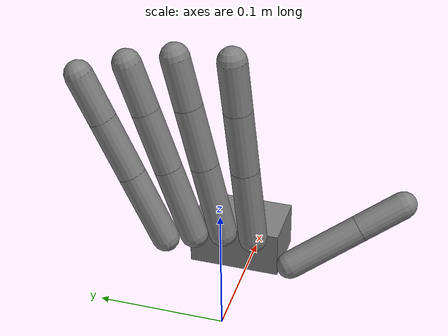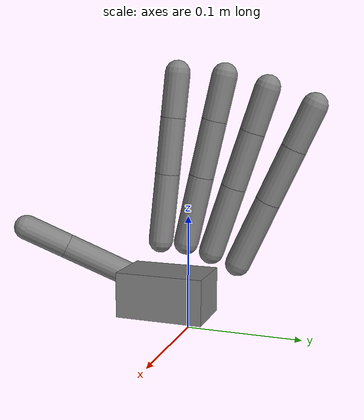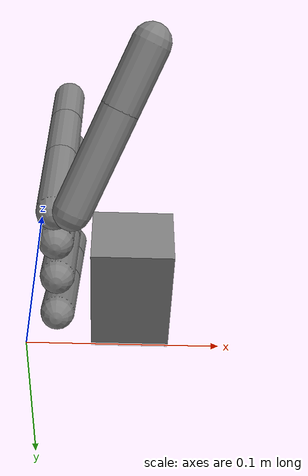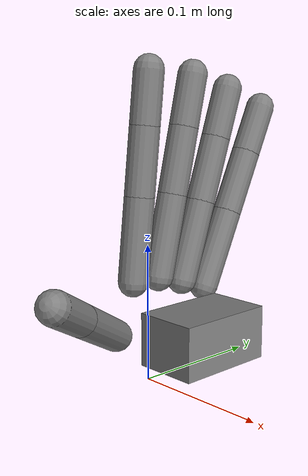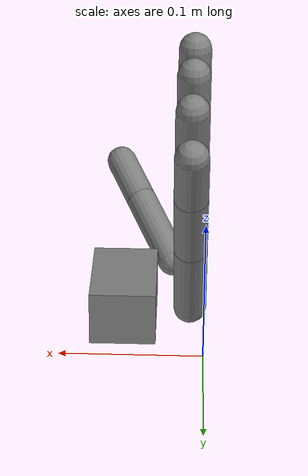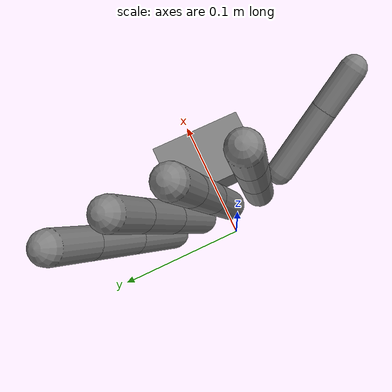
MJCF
<mujoco model="hand_contact_dynamics">
  <compiler angle="radian" autolimits="true"/>
  <option timestep="0.002" gravity="0 0 0" iterations="50" integrator="implicitfast"/>
  <default>
    <geom friction="0.8 0.005 0.0001" solimp="0.9 0.95 0.001 0.5 2" solref="0.01 1" condim="3"/>
    <joint damping="0.5"/>
  </default>
  <worldbody>
    <body name="base_link" pos="0 0 0" quat="1 0 0 0">
      <body name="Left_hand_palm_link" pos="0.004390355 0 0.025" quat="1 0 0 0">
        <inertial mass="0.008" pos="0 0 0" diaginertia="2e-6 2e-6 2e-6"/>
        <!-- 掌心垫：仅与 PIP/DIP 显式 pair；覆盖回扣指尖区域，静息不碰 -->
        <geom name="Left_hand_palm_pad" type="box" size="0.022 0.035 0.018" pos="0.050 0 0.022" contype="0" conaffinity="0"/>
      </body>
      <body name="left_hand_thumb_rota_link" pos="0.00376018 -0.0182864 0.02090747" quat="0.8463941 0.4897374 0.1832494 0.1009655">
        <inertial mass="0.008" pos="0 0 0" diaginertia="2e-6 2e-6 2e-6"/>
        <joint name="left_hand_thumb_rota_joint" type="hinge" axis="0 1 0" range="0 1.57"/>
        <body name="left_hand_thumb_swing_link" pos="-0.0003 0.00885 0.03775" quat="0.9888256 0 0 -0.1490772">
          <inertial mass="0.008" pos="0 0 0" diaginertia="2e-6 2e-6 2e-6"/>
          <joint name="left_hand_thumb_swing_joint" type="hinge" axis="0 0 -1" range="-1 1"/>
          <body name="left_hand_thumb_MCP_link" pos="0 0.012 0.0061" quat="1 0 0 0">
            <inertial mass="0.008" pos="0 0 0" diaginertia="2e-6 2e-6 2e-6"/>
            <joint name="left_hand_thumb_MCP_joint" type="hinge" axis="-1 0 0" range="0 1.57"/>
            <geom name="left_hand_thumb_MCP_link_cap" type="capsule" fromto="0 -0.0103 0  0 -0.0103 0.0585" size="0.0105" contype="1" conaffinity="30"/>
            <body name="left_hand_thumb_PIP_link" pos="0 0 0.0585" quat="1 0 0 0">
              <inertial mass="0.008" pos="0 0 0" diaginertia="2e-6 2e-6 2e-6"/>
              <joint name="left_hand_thumb_PIP_joint" type="hinge" axis="-1 0 0" range="0 1.57"/>
              <!-- 与 PIP 网格一致（z≈0.037）；勿再叠 tip 长度，否则线框/碰撞会翻倍过长 -->
              <geom name="left_hand_thumb_PIP_link_cap" type="capsule" fromto="0 -0.0103 0  0 -0.0103 0.037" size="0.0105" contype="1" conaffinity="30"/>
            </body>
          </body>
        </body>
      </body>
      <body name="left_hand_index_swing_link" pos="0.01567776 -0.02329723 0.06786537" quat="0.9985607 -0.0529440 0.0004540 -0.0085631">
        <inertial mass="0.008" pos="0 0 0" diaginertia="2e-6 2e-6 2e-6"/>
        <joint name="left_hand_index_swing_joint" type="hinge" axis="1 0 0" range="0 0.4537856"/>
        <body name="left_hand_index_MCP_link" pos="0.004 0 0.011354" quat="1 0 0 0">
          <inertial mass="0.008" pos="0 0 0" diaginertia="2e-6 2e-6 2e-6"/>
          <joint name="left_hand_index_MCP_joint" type="hinge" axis="0 1 0" range="0 1.57"/>
          <geom name="left_hand_index_MCP_link_cap" type="capsule" fromto="-0.0103 0 0  -0.0103 0 0.0585" size="0.0105" contype="2" conaffinity="29"/>
          <body name="left_hand_index_PIP_link" pos="0 0 0.0585" quat="1 0 0 0">
            <inertial mass="0.008" pos="0 0 0" diaginertia="2e-6 2e-6 2e-6"/>
            <joint name="left_hand_index_PIP_joint" type="hinge" axis="0 1 0" range="0 1.57"/>
            <geom name="left_hand_index_PIP_link_cap" type="capsule" fromto="-0.0103 0 0  -0.0103 0 0.0475" size="0.0105" contype="2" conaffinity="29"/>
            <body name="left_hand_index_DIP_link" pos="0 0 0.0475" quat="1 0 0 0">
              <inertial mass="0.008" pos="0 0 0" diaginertia="2e-6 2e-6 2e-6"/>
              <joint name="left_hand_index_DIP_joint" type="hinge" axis="0 1 0" range="0 1.57"/>
              <geom name="left_hand_index_DIP_link_cap" type="capsule" fromto="-0.0103 0 0  -0.0103 0 0.037" size="0.0105" contype="2" conaffinity="29"/>
            </body>
          </body>
        </body>
      </body>
      <body name="left_hand_mid_swing_link" pos="0.01605291 -0.001425513 0.0681" quat="0.9935353 -0.1131990 0.0009708 -0.0085200">
        <inertial mass="0.008" pos="0 0 0" diaginertia="2e-6 2e-6 2e-6"/>
        <joint name="left_hand_mid_swing_joint" type="hinge" axis="1 0 0" range="0 0.4537856"/>
        <body name="left_hand_mid_MCP_link" pos="0.004 0 0.011354" quat="1 0 0 0">
          <inertial mass="0.008" pos="0 0 0" diaginertia="2e-6 2e-6 2e-6"/>
          <joint name="left_hand_mid_MCP_joint" type="hinge" axis="0 1 0" range="0 1.57"/>
          <geom name="left_hand_mid_MCP_link_cap" type="capsule" fromto="-0.0103 0 0  -0.0103 0 0.0585" size="0.0105" contype="4" conaffinity="27"/>
          <body name="left_hand_mid_PIP_link" pos="0 0 0.0585" quat="1 0 0 0">
            <inertial mass="0.008" pos="0 0 0" diaginertia="2e-6 2e-6 2e-6"/>
            <joint name="left_hand_mid_PIP_joint" type="hinge" axis="0 1 0" range="0 1.57"/>
            <geom name="left_hand_mid_PIP_link_cap" type="capsule" fromto="-0.0103 0 0  -0.0103 0 0.0475" size="0.0105" contype="4" conaffinity="27"/>
            <body name="left_hand_mid_DIP_link" pos="0 0 0.0475" quat="1 0 0 0">
              <inertial mass="0.008" pos="0 0 0" diaginertia="2e-6 2e-6 2e-6"/>
              <joint name="left_hand_mid_DIP_joint" type="hinge" axis="0 1 0" range="0 1.57"/>
              <geom name="left_hand_mid_DIP_link_cap" type="capsule" fromto="-0.0103 0 0  -0.0103 0 0.037" size="0.0105" contype="4" conaffinity="27"/>
            </body>
          </body>
        </body>
      </body>
      <body name="left_hand_ring_swing_link" pos="0.01642099 0.020034 0.06202128" quat="0.9871279 -0.1597030 0.0013695 -0.0084651">
        <inertial mass="0.008" pos="0 0 0" diaginertia="2e-6 2e-6 2e-6"/>
        <joint name="left_hand_ring_swing_joint" type="hinge" axis="1 0 0" range="0 0.4537856"/>
        <body name="left_hand_ring_MCP_link" pos="0.004 0 0.011354" quat="1 0 0 0">
          <inertial mass="0.008" pos="0 0 0" diaginertia="2e-6 2e-6 2e-6"/>
          <joint name="left_hand_ring_MCP_joint" type="hinge" axis="0 1 0" range="0 1.57"/>
          <geom name="left_hand_ring_MCP_link_cap" type="capsule" fromto="-0.0103 0 0  -0.0103 0 0.0585" size="0.0105" contype="8" conaffinity="23"/>
          <body name="left_hand_ring_PIP_link" pos="0 0 0.0585" quat="1 0 0 0">
            <inertial mass="0.008" pos="0 0 0" diaginertia="2e-6 2e-6 2e-6"/>
            <joint name="left_hand_ring_PIP_joint" type="hinge" axis="0 1 0" range="0 1.57"/>
            <geom name="left_hand_ring_PIP_link_cap" type="capsule" fromto="-0.0103 0 0  -0.0103 0 0.0475" size="0.0105" contype="8" conaffinity="23"/>
            <body name="left_hand_ring_DIP_link" pos="0 0 0.0475" quat="1 0 0 0">
              <inertial mass="0.008" pos="0 0 0" diaginertia="2e-6 2e-6 2e-6"/>
              <joint name="left_hand_ring_DIP_joint" type="hinge" axis="0 1 0" range="0 1.57"/>
              <geom name="left_hand_ring_DIP_link_cap" type="capsule" fromto="-0.0103 0 0  -0.0103 0 0.037" size="0.0105" contype="8" conaffinity="23"/>
            </body>
          </body>
        </body>
      </body>
      <body name="left_hand_pinky_rota_link" pos="0.01042221 0.02015629 0.04144071" quat="0.994951 -0.1003473 0.001703838 -0.0001718432">
        <inertial mass="0.008" pos="0 0 0" diaginertia="2e-6 2e-6 2e-6"/>
        <joint name="left_hand_pinky_rota_joint" type="hinge" axis="0 0 -1" range="0 1.57"/>
        <body name="left_hand_pinky_swing_link" pos="0.005914459 0.01866325 0.0166" quat="0.9935368 -0.1131992 0.0009512 -0.0083484">
          <inertial mass="0.008" pos="0 0 0" diaginertia="2e-6 2e-6 2e-6"/>
          <joint name="left_hand_pinky_swing_joint" type="hinge" axis="1 0 0" range="0 0.4537856"/>
          <body name="left_hand_pinky_MCP_link" pos="0.004 0 0.011354" quat="1 0 0 0">
            <inertial mass="0.008" pos="0 0 0" diaginertia="2e-6 2e-6 2e-6"/>
            <joint name="left_hand_pinky_MCP_joint" type="hinge" axis="0 1 0" range="0 1.57"/>
            <geom name="left_hand_pinky_MCP_link_cap" type="capsule" fromto="-0.0103 0 0  -0.0103 0 0.0585" size="0.0105" contype="16" conaffinity="15"/>
            <body name="left_hand_pinky_PIP_link" pos="0 0 0.0585" quat="1 0 0 0">
              <inertial mass="0.008" pos="0 0 0" diaginertia="2e-6 2e-6 2e-6"/>
              <joint name="left_hand_pinky_PIP_joint" type="hinge" axis="0 1 0" range="0 1.57"/>
              <geom name="left_hand_pinky_PIP_link_cap" type="capsule" fromto="-0.0103 0 0  -0.0103 0 0.0475" size="0.0105" contype="16" conaffinity="15"/>
              <body name="left_hand_pinky_DIP_link" pos="0 0 0.0475" quat="1 0 0 0">
                <inertial mass="0.008" pos="0 0 0" diaginertia="2e-6 2e-6 2e-6"/>
                <joint name="left_hand_pinky_DIP_joint" type="hinge" axis="0 1 0" range="0 1.57"/>
                <geom name="left_hand_pinky_DIP_link_cap" type="capsule" fromto="-0.0103 0 0  -0.0103 0 0.037" size="0.0105" contype="16" conaffinity="15"/>
              </body>
            </body>
          </body>
        </body>
      </body>
    </body>
  </worldbody>
  <contact>
    <!-- 掌心仅与远端指节 pair，避免指根 MCP 与掌垫假穿模 -->
    <pair geom1="Left_hand_palm_pad" geom2="left_hand_thumb_PIP_link_cap"/>
    <pair geom1="Left_hand_palm_pad" geom2="left_hand_index_PIP_link_cap"/>
    <pair geom1="Left_hand_palm_pad" geom2="left_hand_index_DIP_link_cap"/>
    <pair geom1="Left_hand_palm_pad" geom2="left_hand_mid_PIP_link_cap"/>
    <pair geom1="Left_hand_palm_pad" geom2="left_hand_mid_DIP_link_cap"/>
    <pair geom1="Left_hand_palm_pad" geom2="left_hand_ring_PIP_link_cap"/>
    <pair geom1="Left_hand_palm_pad" geom2="left_hand_ring_DIP_link_cap"/>
    <pair geom1="Left_hand_palm_pad" geom2="left_hand_pinky_PIP_link_cap"/>
    <pair geom1="Left_hand_palm_pad" geom2="left_hand_pinky_DIP_link_cap"/>
  </contact>
  <actuator>
    <position name="left_hand_thumb_rota_joint_pos" joint="left_hand_thumb_rota_joint" kp="300.0" kv="10.0" ctrlrange="0 1.57"/>
    <position name="left_hand_thumb_swing_joint_pos" joint="left_hand_thumb_swing_joint" kp="300.0" kv="10.0" ctrlrange="-1 1"/>
    <position name="left_hand_thumb_MCP_joint_pos" joint="left_hand_thumb_MCP_joint" kp="300.0" kv="10.0" ctrlrange="0 1.57"/>
    <position name="left_hand_thumb_PIP_joint_pos" joint="left_hand_thumb_PIP_joint" kp="300.0" kv="10.0" ctrlrange="0 1.57"/>
    <position name="left_hand_index_swing_joint_pos" joint="left_hand_index_swing_joint" kp="300.0" kv="10.0" ctrlrange="0 0.4537856"/>
    <position name="left_hand_index_MCP_joint_pos" joint="left_hand_index_MCP_joint" kp="300.0" kv="10.0" ctrlrange="0 1.57"/>
    <position name="left_hand_index_PIP_joint_pos" joint="left_hand_index_PIP_joint" kp="300.0" kv="10.0" ctrlrange="0 1.57"/>
    <position name="left_hand_index_DIP_joint_pos" joint="left_hand_index_DIP_joint" kp="300.0" kv="10.0" ctrlrange="0 1.57"/>
    <position name="left_hand_mid_swing_joint_pos" joint="left_hand_mid_swing_joint" kp="300.0" kv="10.0" ctrlrange="0 0.4537856"/>
    <position name="left_hand_mid_MCP_joint_pos" joint="left_hand_mid_MCP_joint" kp="300.0" kv="10.0" ctrlrange="0 1.57"/>
    <position name="left_hand_mid_PIP_joint_pos" joint="left_hand_mid_PIP_joint" kp="300.0" kv="10.0" ctrlrange="0 1.57"/>
    <position name="left_hand_mid_DIP_joint_pos" joint="left_hand_mid_DIP_joint" kp="300.0" kv="10.0" ctrlrange="0 1.57"/>
    <position name="left_hand_ring_swing_joint_pos" joint="left_hand_ring_swing_joint" kp="300.0" kv="10.0" ctrlrange="0 0.4537856"/>
    <position name="left_hand_ring_MCP_joint_pos" joint="left_hand_ring_MCP_joint" kp="300.0" kv="10.0" ctrlrange="0 1.57"/>
    <position name="left_hand_ring_PIP_joint_pos" joint="left_hand_ring_PIP_joint" kp="300.0" kv="10.0" ctrlrange="0 1.57"/>
    <position name="left_hand_ring_DIP_joint_pos" joint="left_hand_ring_DIP_joint" kp="300.0" kv="10.0" ctrlrange="0 1.57"/>
    <position name="left_hand_pinky_rota_joint_pos" joint="left_hand_pinky_rota_joint" kp="300.0" kv="10.0" ctrlrange="0 1.57"/>
    <position name="left_hand_pinky_swing_joint_pos" joint="left_hand_pinky_swing_joint" kp="300.0" kv="10.0" ctrlrange="0 0.4537856"/>
    <position name="left_hand_pinky_MCP_joint_pos" joint="left_hand_pinky_MCP_joint" kp="300.0" kv="10.0" ctrlrange="0 1.57"/>
    <position name="left_hand_pinky_PIP_joint_pos" joint="left_hand_pinky_PIP_joint" kp="300.0" kv="10.0" ctrlrange="0 1.57"/>
    <position name="left_hand_pinky_DIP_joint_pos" joint="left_hand_pinky_DIP_joint" kp="300.0" kv="10.0" ctrlrange="0 1.57"/>
  </actuator>
</mujoco>
